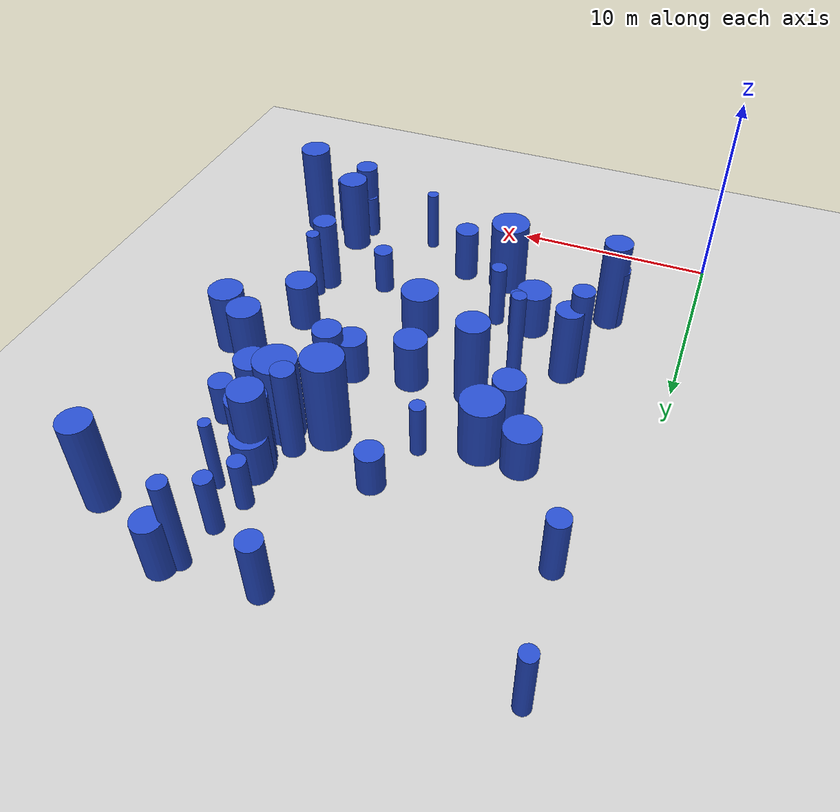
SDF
<sdf version="1.6">
 <world name="default">
  <model name="ground_plane">
   <static>1</static>
   <link name="link">
    <collision name="collision">
     <geometry><plane><normal>0 0 1</normal><size>100 100</size></plane></geometry>
     <surface><friction><ode><mu>100</mu><mu2>50</mu2></ode></friction></surface>
    </collision>
    <visual name="visual">
     <cast_shadows>0</cast_shadows>
     <geometry><plane><normal>0 0 1</normal><size>100 100</size></plane></geometry>
     <material>
      <script><uri>file://media/materials/scripts/gazebo.material</uri><name>Gazebo/Grey</name></script>
     </material>
    </visual>
   </link>
  </model>
  <model name="0">
   <static>0</static>
   <link name="link">
    <inertial>
     <mass>2</mass>
     <inertia><ixx>1.44488</ixx><ixy>0</ixy><ixz>0</ixz><iyy>1.44488</iyy><iyz>0</iyz><izz>0.600062</izz></inertia>
    </inertial>
    <collision name="collision">
     <geometry><cylinder><length>2.6209</length><radius>0.774637</radius></cylinder></geometry>
     <surface><contact><collide_without_contact>1</collide_without_contact></contact></surface>
    </collision>
    <visual name="visual">
     <geometry><cylinder><length>2.6209</length><radius>0.774637</radius></cylinder></geometry>
     <material>
      <script><uri>file://media/materials/scripts/gazebo.material</uri><name>Gazebo/Blue</name></script>
     </material>
    </visual>
    <gravity>0</gravity>
   </link>
   <pose>18.5084 11.3578 1.31045 0 -0 0</pose>
  </model>
  <model name="5">
   <static>0</static>
   <link name="link">
    <inertial>
     <mass>2</mass>
     <inertia><ixx>1.15559</ixx><ixy>0</ixy><ixz>0</ixz><iyy>1.15559</iyy><iyz>0</iyz><izz>0.571928</izz></inertia>
    </inertial>
    <collision name="collision">
     <geometry><cylinder><length>2.28424</length><radius>0.756259</radius></cylinder></geometry>
     <surface><contact><collide_without_contact>1</collide_without_contact></contact></surface>
    </collision>
    <visual name="visual">
     <geometry><cylinder><length>2.28424</length><radius>0.756259</radius></cylinder></geometry>
     <material>
      <script><uri>file://media/materials/scripts/gazebo.material</uri><name>Gazebo/Blue</name></script>
     </material>
    </visual>
    <gravity>0</gravity>
   </link>
   <pose>14.5568 14.0318 1.14212 0 -0 0</pose>
  </model>
  <model name="9">
   <static>0</static>
   <link name="link">
    <inertial>
     <mass>2</mass>
     <inertia><ixx>2.4622</ixx><ixy>0</ixy><ixz>0</ixz><iyy>2.4622</iyy><iyz>0</iyz><izz>0.0741787</izz></inertia>
    </inertial>
    <collision name="collision">
     <geometry><cylinder><length>3.81453</length><radius>0.272358</radius></cylinder></geometry>
     <surface><contact><collide_without_contact>1</collide_without_contact></contact></surface>
    </collision>
    <visual name="visual">
     <geometry><cylinder><length>3.81453</length><radius>0.272358</radius></cylinder></geometry>
     <material>
      <script><uri>file://media/materials/scripts/gazebo.material</uri><name>Gazebo/Blue</name></script>
     </material>
    </visual>
    <gravity>0</gravity>
   </link>
   <pose>16.9794 22.3718 1.90727 0 -0 0</pose>
  </model>
  <model name="20">
   <static>0</static>
   <link name="link">
    <inertial>
     <mass>2</mass>
     <inertia>
      <ixx>0.985313</ixx>
      <ixy>0</ixy>
      <ixz>0</ixz>
      <iyy>0.985313</iyy>
      <iyz>0</iyz>
      <izz>0.312388</izz>
     </inertia>
    </inertial>
    <collision name="collision">
     <geometry><cylinder><length>2.23041</length><radius>0.558917</radius></cylinder></geometry>
     <surface><contact><collide_without_contact>1</collide_without_contact></contact></surface>
    </collision>
    <visual name="visual">
     <geometry><cylinder><length>2.23041</length><radius>0.558917</radius></cylinder></geometry>
     <material>
      <script><uri>file://media/materials/scripts/gazebo.material</uri><name>Gazebo/Blue</name></script>
     </material>
    </visual>
    <gravity>0</gravity>
   </link>
   <pose>18.7341 18.7242 1.1152 0 -0 0</pose>
  </model>
  <model name="24">
   <static>0</static>
   <link name="link">
    <inertial>
     <mass>2</mass>
     <inertia><ixx>1.15813</ixx><ixy>0</ixy><ixz>0</ixz><iyy>1.15813</iyy><iyz>0</iyz><izz>0.112947</izz></inertia>
    </inertial>
    <collision name="collision">
     <geometry><cylinder><length>2.57098</length><radius>0.336075</radius></cylinder></geometry>
     <surface><contact><collide_without_contact>1</collide_without_contact></contact></surface>
    </collision>
    <visual name="visual">
     <geometry><cylinder><length>2.57098</length><radius>0.336075</radius></cylinder></geometry>
     <material>
      <script><uri>file://media/materials/scripts/gazebo.material</uri><name>Gazebo/Blue</name></script>
     </material>
    </visual>
    <gravity>0</gravity>
   </link>
   <pose>8.17971 8.45153 1.28549 0 -0 0</pose>
  </model>
  <model name="43">
   <static>0</static>
   <link name="link">
    <inertial>
     <mass>2</mass>
     <inertia><ixx>2.22072</ixx><ixy>0</ixy><ixz>0</ixz><iyy>2.22072</iyy><iyz>0</iyz><izz>0.71958</izz></inertia>
    </inertial>
    <collision name="collision">
     <geometry><cylinder><length>3.3415</length><radius>0.84828</radius></cylinder></geometry>
     <surface><contact><collide_without_contact>1</collide_without_contact></contact></surface>
    </collision>
    <visual name="visual">
     <geometry><cylinder><length>3.3415</length><radius>0.84828</radius></cylinder></geometry>
     <material>
      <script><uri>file://media/materials/scripts/gazebo.material</uri><name>Gazebo/Blue</name></script>
     </material>
    </visual>
    <gravity>0</gravity>
   </link>
   <pose>21.0235 14.1172 1.67075 0 -0 0</pose>
  </model>
  <model name="44">
   <static>0</static>
   <link name="link">
    <inertial>
     <mass>2</mass>
     <inertia>
      <ixx>0.938137</ixx>
      <ixy>0</ixy>
      <ixz>0</ixz>
      <iyy>0.938137</iyy>
      <iyz>0</iyz>
      <izz>0.405193</izz>
     </inertia>
    </inertial>
    <collision name="collision">
     <geometry><cylinder><length>2.10077</length><radius>0.636547</radius></cylinder></geometry>
     <surface><contact><collide_without_contact>1</collide_without_contact></contact></surface>
    </collision>
    <visual name="visual">
     <geometry><cylinder><length>2.10077</length><radius>0.636547</radius></cylinder></geometry>
     <material>
      <script><uri>file://media/materials/scripts/gazebo.material</uri><name>Gazebo/Blue</name></script>
     </material>
    </visual>
    <gravity>0</gravity>
   </link>
   <pose>10.9429 20.0317 1.05039 0 -0 0</pose>
  </model>
  <model name="48">
   <static>0</static>
   <link name="link">
    <inertial>
     <mass>2</mass>
     <inertia><ixx>2.00723</ixx><ixy>0</ixy><ixz>0</ixz><iyy>2.00723</iyy><iyz>0</iyz><izz>0.44952</izz></inertia>
    </inertial>
    <collision name="collision">
     <geometry><cylinder><length>3.27029</length><radius>0.670462</radius></cylinder></geometry>
     <surface><contact><collide_without_contact>1</collide_without_contact></contact></surface>
    </collision>
    <visual name="visual">
     <geometry><cylinder><length>3.27029</length><radius>0.670462</radius></cylinder></geometry>
     <material>
      <script><uri>file://media/materials/scripts/gazebo.material</uri><name>Gazebo/Blue</name></script>
     </material>
    </visual>
    <gravity>0</gravity>
   </link>
   <pose>3.91397 5.71334 1.63514 0 -0 0</pose>
  </model>
  <model name="50">
   <static>0</static>
   <link name="link">
    <inertial>
     <mass>2</mass>
     <inertia><ixx>4.36449</ixx><ixy>0</ixy><ixz>0</ixz><iyy>4.36449</iyy><iyz>0</iyz><izz>0.596492</izz></inertia>
    </inertial>
    <collision name="collision">
     <geometry><cylinder><length>4.93938</length><radius>0.772329</radius></cylinder></geometry>
     <surface><contact><collide_without_contact>1</collide_without_contact></contact></surface>
    </collision>
    <visual name="visual">
     <geometry><cylinder><length>4.93938</length><radius>0.772329</radius></cylinder></geometry>
     <material>
      <script><uri>file://media/materials/scripts/gazebo.material</uri><name>Gazebo/Blue</name></script>
     </material>
    </visual>
    <gravity>0</gravity>
   </link>
   <pose>21.6401 3.0206 2.46969 0 -0 0</pose>
  </model>
  <model name="53">
   <static>0</static>
   <link name="link">
    <inertial>
     <mass>2</mass>
     <inertia><ixx>4.1614</ixx><ixy>0</ixy><ixz>0</ixz><iyy>4.1614</iyy><iyz>0</iyz><izz>0.483095</izz></inertia>
    </inertial>
    <collision name="collision">
     <geometry><cylinder><length>4.84965</length><radius>0.695051</radius></cylinder></geometry>
     <surface><contact><collide_without_contact>1</collide_without_contact></contact></surface>
    </collision>
    <visual name="visual">
     <geometry><cylinder><length>4.84965</length><radius>0.695051</radius></cylinder></geometry>
     <material>
      <script><uri>file://media/materials/scripts/gazebo.material</uri><name>Gazebo/Blue</name></script>
     </material>
    </visual>
    <gravity>0</gravity>
   </link>
   <pose>4.01536 5.78977 2.42483 0 -0 0</pose>
  </model>
  <model name="57">
   <static>0</static>
   <link name="link">
    <inertial>
     <mass>2</mass>
     <inertia><ixx>1.34468</ixx><ixy>0</ixy><ixz>0</ixz><iyy>1.34468</iyy><iyz>0</iyz><izz>0.738276</izz></inertia>
    </inertial>
    <collision name="collision">
     <geometry><cylinder><length>2.41935</length><radius>0.85923</radius></cylinder></geometry>
     <surface><contact><collide_without_contact>1</collide_without_contact></contact></surface>
    </collision>
    <visual name="visual">
     <geometry><cylinder><length>2.41935</length><radius>0.85923</radius></cylinder></geometry>
     <material>
      <script><uri>file://media/materials/scripts/gazebo.material</uri><name>Gazebo/Blue</name></script>
     </material>
    </visual>
    <gravity>0</gravity>
   </link>
   <pose>7.50045 7.71689 1.20967 0 -0 0</pose>
  </model>
  <model name="58">
   <static>0</static>
   <link name="link">
    <inertial>
     <mass>2</mass>
     <inertia><ixx>2.13713</ixx><ixy>0</ixy><ixz>0</ixz><iyy>2.13713</iyy><iyz>0</iyz><izz>0.129492</izz></inertia>
    </inertial>
    <collision name="collision">
     <geometry><cylinder><length>3.52623</length><radius>0.35985</radius></cylinder></geometry>
     <surface><contact><collide_without_contact>1</collide_without_contact></contact></surface>
    </collision>
    <visual name="visual">
     <geometry><cylinder><length>3.52623</length><radius>0.35985</radius></cylinder></geometry>
     <material>
      <script><uri>file://media/materials/scripts/gazebo.material</uri><name>Gazebo/Blue</name></script>
     </material>
    </visual>
    <gravity>0</gravity>
   </link>
   <pose>2.13297 27.1405 1.76312 0 -0 0</pose>
  </model>
  <model name="59">
   <static>0</static>
   <link name="link">
    <inertial>
     <mass>2</mass>
     <inertia><ixx>1.95679</ixx><ixy>0</ixy><ixz>0</ixz><iyy>1.95679</iyy><iyz>0</iyz><izz>0.291907</izz></inertia>
    </inertial>
    <collision name="collision">
     <geometry><cylinder><length>3.29622</length><radius>0.540284</radius></cylinder></geometry>
     <surface><contact><collide_without_contact>1</collide_without_contact></contact></surface>
    </collision>
    <visual name="visual">
     <geometry><cylinder><length>3.29622</length><radius>0.540284</radius></cylinder></geometry>
     <material>
      <script><uri>file://media/materials/scripts/gazebo.material</uri><name>Gazebo/Blue</name></script>
     </material>
    </visual>
    <gravity>0</gravity>
   </link>
   <pose>12.7214 26.4089 1.64811 0 -0 0</pose>
  </model>
  <model name="79">
   <static>0</static>
   <link name="link">
    <inertial>
     <mass>2</mass>
     <inertia><ixx>4.22648</ixx><ixy>0</ixy><ixz>0</ixz><iyy>4.22648</iyy><iyz>0</iyz><izz>0.120914</izz></inertia>
    </inertial>
    <collision name="collision">
     <geometry><cylinder><length>4.99961</length><radius>0.347727</radius></cylinder></geometry>
     <surface><contact><collide_without_contact>1</collide_without_contact></contact></surface>
    </collision>
    <visual name="visual">
     <geometry><cylinder><length>4.99961</length><radius>0.347727</radius></cylinder></geometry>
     <material>
      <script><uri>file://media/materials/scripts/gazebo.material</uri><name>Gazebo/Blue</name></script>
     </material>
    </visual>
    <gravity>0</gravity>
   </link>
   <pose>7.28848 11.5718 2.49981 0 -0 0</pose>
  </model>
  <model name="85">
   <static>0</static>
   <link name="link">
    <inertial>
     <mass>2</mass>
     <inertia><ixx>1.35185</ixx><ixy>0</ixy><ixz>0</ixz><iyy>1.35185</iyy><iyz>0</iyz><izz>0.134537</izz></inertia>
    </inertial>
    <collision name="collision">
     <geometry><cylinder><length>2.77624</length><radius>0.366793</radius></cylinder></geometry>
     <surface><contact><collide_without_contact>1</collide_without_contact></contact></surface>
    </collision>
    <visual name="visual">
     <geometry><cylinder><length>2.77624</length><radius>0.366793</radius></cylinder></geometry>
     <material>
      <script><uri>file://media/materials/scripts/gazebo.material</uri><name>Gazebo/Blue</name></script>
     </material>
    </visual>
    <gravity>0</gravity>
   </link>
   <pose>9.80805 17.5106 1.38812 0 -0 0</pose>
  </model>
  <model name="88">
   <static>0</static>
   <link name="link">
    <inertial>
     <mass>2</mass>
     <inertia><ixx>2.81885</ixx><ixy>0</ixy><ixz>0</ixz><iyy>2.81885</iyy><iyz>0</iyz><izz>0.82529</izz></inertia>
    </inertial>
    <collision name="collision">
     <geometry><cylinder><length>3.79964</length><radius>0.908455</radius></cylinder></geometry>
     <surface><contact><collide_without_contact>1</collide_without_contact></contact></surface>
    </collision>
    <visual name="visual">
     <geometry><cylinder><length>3.79964</length><radius>0.908455</radius></cylinder></geometry>
     <material>
      <script><uri>file://media/materials/scripts/gazebo.material</uri><name>Gazebo/Blue</name></script>
     </material>
    </visual>
    <gravity>0</gravity>
   </link>
   <pose>16.1867 20.5094 1.89982 0 -0 0</pose>
  </model>
  <model name="94">
   <static>0</static>
   <link name="link">
    <inertial>
     <mass>2</mass>
     <inertia><ixx>2.06501</ixx><ixy>0</ixy><ixz>0</ixz><iyy>2.06501</iyy><iyz>0</iyz><izz>0.98519</izz></inertia>
    </inertial>
    <collision name="collision">
     <geometry><cylinder><length>3.07156</length><radius>0.992567</radius></cylinder></geometry>
     <surface><contact><collide_without_contact>1</collide_without_contact></contact></surface>
    </collision>
    <visual name="visual">
     <geometry><cylinder><length>3.07156</length><radius>0.992567</radius></cylinder></geometry>
     <material>
      <script><uri>file://media/materials/scripts/gazebo.material</uri><name>Gazebo/Blue</name></script>
     </material>
    </visual>
    <gravity>0</gravity>
   </link>
   <pose>7.2758 16.5381 1.53578 0 -0 0</pose>
  </model>
  <model name="100">
   <static>0</static>
   <link name="link">
    <inertial>
     <mass>2</mass>
     <inertia><ixx>2.93556</ixx><ixy>0</ixy><ixz>0</ixz><iyy>2.93556</iyy><iyz>0</iyz><izz>0.950215</izz></inertia>
    </inertial>
    <collision name="collision">
     <geometry><cylinder><length>3.84223</length><radius>0.97479</radius></cylinder></geometry>
     <surface><contact><collide_without_contact>1</collide_without_contact></contact></surface>
    </collision>
    <visual name="visual">
     <geometry><cylinder><length>3.84223</length><radius>0.97479</radius></cylinder></geometry>
     <material>
      <script><uri>file://media/materials/scripts/gazebo.material</uri><name>Gazebo/Blue</name></script>
     </material>
    </visual>
    <gravity>0</gravity>
   </link>
   <pose>9.77484 4.57921 1.92111 0 -0 0</pose>
  </model>
  <model name="102">
   <static>0</static>
   <link name="link">
    <inertial>
     <mass>2</mass>
     <inertia><ixx>1.41837</ixx><ixy>0</ixy><ixz>0</ixz><iyy>1.41837</iyy><iyz>0</iyz><izz>0.884479</izz></inertia>
    </inertial>
    <collision name="collision">
     <geometry><cylinder><length>2.42008</length><radius>0.940468</radius></cylinder></geometry>
     <surface><contact><collide_without_contact>1</collide_without_contact></contact></surface>
    </collision>
    <visual name="visual">
     <geometry><cylinder><length>2.42008</length><radius>0.940468</radius></cylinder></geometry>
     <material>
      <script><uri>file://media/materials/scripts/gazebo.material</uri><name>Gazebo/Blue</name></script>
     </material>
    </visual>
    <gravity>0</gravity>
   </link>
   <pose>12.7834 9.73949 1.21004 0 -0 0</pose>
  </model>
  <model name="108">
   <static>0</static>
   <link name="link">
    <inertial>
     <mass>2</mass>
     <inertia><ixx>1.98997</ixx><ixy>0</ixy><ixz>0</ixz><iyy>1.98997</iyy><iyz>0</iyz><izz>0.149514</izz></inertia>
    </inertial>
    <collision name="collision">
     <geometry><cylinder><length>3.38988</length><radius>0.38667</radius></cylinder></geometry>
     <surface><contact><collide_without_contact>1</collide_without_contact></contact></surface>
    </collision>
    <visual name="visual">
     <geometry><cylinder><length>3.38988</length><radius>0.38667</radius></cylinder></geometry>
     <material>
      <script><uri>file://media/materials/scripts/gazebo.material</uri><name>Gazebo/Blue</name></script>
     </material>
    </visual>
    <gravity>0</gravity>
   </link>
   <pose>9.34453 7.81257 1.69494 0 -0 0</pose>
  </model>
  <model name="117">
   <static>0</static>
   <link name="link">
    <inertial>
     <mass>2</mass>
     <inertia><ixx>3.02417</ixx><ixy>0</ixy><ixz>0</ixz><iyy>3.02417</iyy><iyz>0</iyz><izz>0.335481</izz></inertia>
    </inertial>
    <collision name="collision">
     <geometry><cylinder><length>4.13988</length><radius>0.579207</radius></cylinder></geometry>
     <surface><contact><collide_without_contact>1</collide_without_contact></contact></surface>
    </collision>
    <visual name="visual">
     <geometry><cylinder><length>4.13988</length><radius>0.579207</radius></cylinder></geometry>
     <material>
      <script><uri>file://media/materials/scripts/gazebo.material</uri><name>Gazebo/Blue</name></script>
     </material>
    </visual>
    <gravity>0</gravity>
   </link>
   <pose>18.7832 2.53602 2.06994 0 -0 0</pose>
  </model>
  <model name="118">
   <static>0</static>
   <link name="link">
    <inertial>
     <mass>2</mass>
     <inertia><ixx>3.62814</ixx><ixy>0</ixy><ixz>0</ixz><iyy>3.62814</iyy><iyz>0</iyz><izz>0.622042</izz></inertia>
    </inertial>
    <collision name="collision">
     <geometry><cylinder><length>4.46124</length><radius>0.788696</radius></cylinder></geometry>
     <surface><contact><collide_without_contact>1</collide_without_contact></contact></surface>
    </collision>
    <visual name="visual">
     <geometry><cylinder><length>4.46124</length><radius>0.788696</radius></cylinder></geometry>
     <material>
      <script><uri>file://media/materials/scripts/gazebo.material</uri><name>Gazebo/Blue</name></script>
     </material>
    </visual>
    <gravity>0</gravity>
   </link>
   <pose>8.79438 13.4327 2.23062 0 -0 0</pose>
  </model>
  <model name="122">
   <static>0</static>
   <link name="link">
    <inertial>
     <mass>2</mass>
     <inertia><ixx>1.87042</ixx><ixy>0</ixy><ixz>0</ixz><iyy>1.87042</iyy><iyz>0</iyz><izz>0.254902</izz></inertia>
    </inertial>
    <collision name="collision">
     <geometry><cylinder><length>3.23386</length><radius>0.504878</radius></cylinder></geometry>
     <surface><contact><collide_without_contact>1</collide_without_contact></contact></surface>
    </collision>
    <visual name="visual">
     <geometry><cylinder><length>3.23386</length><radius>0.504878</radius></cylinder></geometry>
     <material>
      <script><uri>file://media/materials/scripts/gazebo.material</uri><name>Gazebo/Blue</name></script>
     </material>
    </visual>
    <gravity>0</gravity>
   </link>
   <pose>2.64636 21.4148 1.61693 0 -0 0</pose>
  </model>
  <model name="127">
   <static>0</static>
   <link name="link">
    <inertial>
     <mass>2</mass>
     <inertia><ixx>1.09592</ixx><ixy>0</ixy><ixz>0</ixz><iyy>1.09592</iyy><iyz>0</iyz><izz>0.235453</izz></inertia>
    </inertial>
    <collision name="collision">
     <geometry><cylinder><length>2.42263</length><radius>0.485235</radius></cylinder></geometry>
     <surface><contact><collide_without_contact>1</collide_without_contact></contact></surface>
    </collision>
    <visual name="visual">
     <geometry><cylinder><length>2.42263</length><radius>0.485235</radius></cylinder></geometry>
     <material>
      <script><uri>file://media/materials/scripts/gazebo.material</uri><name>Gazebo/Blue</name></script>
     </material>
    </visual>
    <gravity>0</gravity>
   </link>
   <pose>15.8013 7.30906 1.21132 0 -0 0</pose>
  </model>
  <model name="132">
   <static>0</static>
   <link name="link">
    <inertial>
     <mass>2</mass>
     <inertia><ixx>1.84648</ixx><ixy>0</ixy><ixz>0</ixz><iyy>1.84648</iyy><iyz>0</iyz><izz>0.561534</izz></inertia>
    </inertial>
    <collision name="collision">
     <geometry><cylinder><length>3.06501</length><radius>0.749356</radius></cylinder></geometry>
     <surface><contact><collide_without_contact>1</collide_without_contact></contact></surface>
    </collision>
    <visual name="visual">
     <geometry><cylinder><length>3.06501</length><radius>0.749356</radius></cylinder></geometry>
     <material>
      <script><uri>file://media/materials/scripts/gazebo.material</uri><name>Gazebo/Blue</name></script>
     </material>
    </visual>
    <gravity>0</gravity>
   </link>
   <pose>6.58976 14.8962 1.53251 0 -0 0</pose>
  </model>
  <model name="140">
   <static>0</static>
   <link name="link">
    <inertial>
     <mass>2</mass>
     <inertia><ixx>2.38496</ixx><ixy>0</ixy><ixz>0</ixz><iyy>2.38496</iyy><iyz>0</iyz><izz>0.113818</izz></inertia>
    </inertial>
    <collision name="collision">
     <geometry><cylinder><length>3.73742</length><radius>0.33737</radius></cylinder></geometry>
     <surface><contact><collide_without_contact>1</collide_without_contact></contact></surface>
    </collision>
    <visual name="visual">
     <geometry><cylinder><length>3.73742</length><radius>0.33737</radius></cylinder></geometry>
     <material>
      <script><uri>file://media/materials/scripts/gazebo.material</uri><name>Gazebo/Blue</name></script>
     </material>
    </visual>
    <gravity>0</gravity>
   </link>
   <pose>18.9409 8.96356 1.86871 0 -0 0</pose>
  </model>
  <model name="153">
   <static>0</static>
   <link name="link">
    <inertial>
     <mass>2</mass>
     <inertia><ixx>1.69776</ixx><ixy>0</ixy><ixz>0</ixz><iyy>1.69776</iyy><iyz>0</iyz><izz>0.423456</izz></inertia>
    </inertial>
    <collision name="collision">
     <geometry><cylinder><length>2.986</length><radius>0.650735</radius></cylinder></geometry>
     <surface><contact><collide_without_contact>1</collide_without_contact></contact></surface>
    </collision>
    <visual name="visual">
     <geometry><cylinder><length>2.986</length><radius>0.650735</radius></cylinder></geometry>
     <material>
      <script><uri>file://media/materials/scripts/gazebo.material</uri><name>Gazebo/Blue</name></script>
     </material>
    </visual>
    <gravity>0</gravity>
   </link>
   <pose>16.8882 26.7755 1.493 0 -0 0</pose>
  </model>
  <model name="154">
   <static>0</static>
   <link name="link">
    <inertial>
     <mass>2</mass>
     <inertia>
      <ixx>1.91362</ixx>
      <ixy>0</ixy>
      <ixz>0</ixz>
      <iyy>1.91362</iyy>
      <iyz>0</iyz>
      <izz>0.0902472</izz>
     </inertia>
    </inertial>
    <collision name="collision">
     <geometry><cylinder><length>3.34828</length><radius>0.300412</radius></cylinder></geometry>
     <surface><contact><collide_without_contact>1</collide_without_contact></contact></surface>
    </collision>
    <visual name="visual">
     <geometry><cylinder><length>3.34828</length><radius>0.300412</radius></cylinder></geometry>
     <material>
      <script><uri>file://media/materials/scripts/gazebo.material</uri><name>Gazebo/Blue</name></script>
     </material>
    </visual>
    <gravity>0</gravity>
   </link>
   <pose>14.7819 2.70133 1.67414 0 -0 0</pose>
  </model>
  <model name="156">
   <static>0</static>
   <link name="link">
    <inertial>
     <mass>2</mass>
     <inertia><ixx>2.78994</ixx><ixy>0</ixy><ixz>0</ixz><iyy>2.78994</iyy><iyz>0</iyz><izz>0.355197</izz></inertia>
    </inertial>
    <collision name="collision">
     <geometry><cylinder><length>3.95905</length><radius>0.595984</radius></cylinder></geometry>
     <surface><contact><collide_without_contact>1</collide_without_contact></contact></surface>
    </collision>
    <visual name="visual">
     <geometry><cylinder><length>3.95905</length><radius>0.595984</radius></cylinder></geometry>
     <material>
      <script><uri>file://media/materials/scripts/gazebo.material</uri><name>Gazebo/Blue</name></script>
     </material>
    </visual>
    <gravity>0</gravity>
   </link>
   <pose>18.7412 7.97413 1.97952 0 -0 0</pose>
  </model>
  <model name="158">
   <static>0</static>
   <link name="link">
    <inertial>
     <mass>2</mass>
     <inertia>
      <ixx>2.98725</ixx>
      <ixy>0</ixy>
      <ixz>0</ixz>
      <iyy>2.98725</iyy>
      <iyz>0</iyz>
      <izz>0.0869814</izz>
     </inertia>
    </inertial>
    <collision name="collision">
     <geometry><cylinder><length>4.20268</length><radius>0.294926</radius></cylinder></geometry>
     <surface><contact><collide_without_contact>1</collide_without_contact></contact></surface>
    </collision>
    <visual name="visual">
     <geometry><cylinder><length>4.20268</length><radius>0.294926</radius></cylinder></geometry>
     <material>
      <script><uri>file://media/materials/scripts/gazebo.material</uri><name>Gazebo/Blue</name></script>
     </material>
    </visual>
    <gravity>0</gravity>
   </link>
   <pose>7.3226 11.294 2.10134 0 -0 0</pose>
  </model>
  <model name="168">
   <static>0</static>
   <link name="link">
    <inertial>
     <mass>2</mass>
     <inertia><ixx>3.86097</ixx><ixy>0</ixy><ixz>0</ixz><iyy>3.86097</iyy><iyz>0</iyz><izz>0.602433</izz></inertia>
    </inertial>
    <collision name="collision">
     <geometry><cylinder><length>4.62153</length><radius>0.776166</radius></cylinder></geometry>
     <surface><contact><collide_without_contact>1</collide_without_contact></contact></surface>
    </collision>
    <visual name="visual">
     <geometry><cylinder><length>4.62153</length><radius>0.776166</radius></cylinder></geometry>
     <material>
      <script><uri>file://media/materials/scripts/gazebo.material</uri><name>Gazebo/Blue</name></script>
     </material>
    </visual>
    <gravity>0</gravity>
   </link>
   <pose>15.895 20.8243 2.31076 0 -0 0</pose>
  </model>
  <model name="172">
   <static>0</static>
   <link name="link">
    <inertial>
     <mass>2</mass>
     <inertia><ixx>1.05244</ixx><ixy>0</ixy><ixz>0</ixz><iyy>1.05244</iyy><iyz>0</iyz><izz>0.132693</izz></inertia>
    </inertial>
    <collision name="collision">
     <geometry><cylinder><length>2.4324</length><radius>0.36427</radius></cylinder></geometry>
     <surface><contact><collide_without_contact>1</collide_without_contact></contact></surface>
    </collision>
    <visual name="visual">
     <geometry><cylinder><length>2.4324</length><radius>0.36427</radius></cylinder></geometry>
     <material>
      <script><uri>file://media/materials/scripts/gazebo.material</uri><name>Gazebo/Blue</name></script>
     </material>
    </visual>
    <gravity>0</gravity>
   </link>
   <pose>18.4969 2.7797 1.2162 0 -0 0</pose>
  </model>
  <model name="174">
   <static>0</static>
   <link name="link">
    <inertial>
     <mass>2</mass>
     <inertia><ixx>4.14774</ixx><ixy>0</ixy><ixz>0</ixz><iyy>4.14774</iyy><iyz>0</iyz><izz>0.279668</izz></inertia>
    </inertial>
    <collision name="collision">
     <geometry><cylinder><length>4.90382</length><radius>0.528837</radius></cylinder></geometry>
     <surface><contact><collide_without_contact>1</collide_without_contact></contact></surface>
    </collision>
    <visual name="visual">
     <geometry><cylinder><length>4.90382</length><radius>0.528837</radius></cylinder></geometry>
     <material>
      <script><uri>file://media/materials/scripts/gazebo.material</uri><name>Gazebo/Blue</name></script>
     </material>
    </visual>
    <gravity>0</gravity>
   </link>
   <pose>4.68632 10.0982 2.45191 0 -0 0</pose>
  </model>
  <model name="177">
   <static>0</static>
   <link name="link">
    <inertial>
     <mass>2</mass>
     <inertia><ixx>2.74835</ixx><ixy>0</ixy><ixz>0</ixz><iyy>2.74835</iyy><iyz>0</iyz><izz>0.609187</izz></inertia>
    </inertial>
    <collision name="collision">
     <geometry><cylinder><length>3.82917</length><radius>0.780504</radius></cylinder></geometry>
     <surface><contact><collide_without_contact>1</collide_without_contact></contact></surface>
    </collision>
    <visual name="visual">
     <geometry><cylinder><length>3.82917</length><radius>0.780504</radius></cylinder></geometry>
     <material>
      <script><uri>file://media/materials/scripts/gazebo.material</uri><name>Gazebo/Blue</name></script>
     </material>
    </visual>
    <gravity>0</gravity>
   </link>
   <pose>17.1312 18.4067 1.91459 0 -0 0</pose>
  </model>
  <model name="181">
   <static>0</static>
   <link name="link">
    <inertial>
     <mass>2</mass>
     <inertia><ixx>1.25919</ixx><ixy>0</ixy><ixz>0</ixz><iyy>1.25919</iyy><iyz>0</iyz><izz>0.729113</izz></inertia>
    </inertial>
    <collision name="collision">
     <geometry><cylinder><length>2.31685</length><radius>0.853881</radius></cylinder></geometry>
     <surface><contact><collide_without_contact>1</collide_without_contact></contact></surface>
    </collision>
    <visual name="visual">
     <geometry><cylinder><length>2.31685</length><radius>0.853881</radius></cylinder></geometry>
     <material>
      <script><uri>file://media/materials/scripts/gazebo.material</uri><name>Gazebo/Blue</name></script>
     </material>
    </visual>
    <gravity>0</gravity>
   </link>
   <pose>5.38353 16.8018 1.15842 0 -0 0</pose>
  </model>
  <model name="186">
   <static>0</static>
   <link name="link">
    <inertial>
     <mass>2</mass>
     <inertia><ixx>1.49255</ixx><ixy>0</ixy><ixz>0</ixz><iyy>1.49255</iyy><iyz>0</iyz><izz>0.644241</izz></inertia>
    </inertial>
    <collision name="collision">
     <geometry><cylinder><length>2.65002</length><radius>0.802646</radius></cylinder></geometry>
     <surface><contact><collide_without_contact>1</collide_without_contact></contact></surface>
    </collision>
    <visual name="visual">
     <geometry><cylinder><length>2.65002</length><radius>0.802646</radius></cylinder></geometry>
     <material>
      <script><uri>file://media/materials/scripts/gazebo.material</uri><name>Gazebo/Blue</name></script>
     </material>
    </visual>
    <gravity>0</gravity>
   </link>
   <pose>11.7399 13.5246 1.32501 0 -0 0</pose>
  </model>
  <model name="187">
   <static>0</static>
   <link name="link">
    <inertial>
     <mass>2</mass>
     <inertia><ixx>4.23987</ixx><ixy>0</ixy><ixz>0</ixz><iyy>4.23987</iyy><iyz>0</iyz><izz>0.923201</izz></inertia>
    </inertial>
    <collision name="collision">
     <geometry><cylinder><length>4.76126</length><radius>0.960834</radius></cylinder></geometry>
     <surface><contact><collide_without_contact>1</collide_without_contact></contact></surface>
    </collision>
    <visual name="visual">
     <geometry><cylinder><length>4.76126</length><radius>0.960834</radius></cylinder></geometry>
     <material>
      <script><uri>file://media/materials/scripts/gazebo.material</uri><name>Gazebo/Blue</name></script>
     </material>
    </visual>
    <gravity>0</gravity>
   </link>
   <pose>13.7917 18.1429 2.38063 0 -0 0</pose>
  </model>
  <model name="190">
   <static>0</static>
   <link name="link">
    <inertial>
     <mass>2</mass>
     <inertia><ixx>3.58166</ixx><ixy>0</ixy><ixz>0</ixz><iyy>3.58166</iyy><iyz>0</iyz><izz>0.960053</izz></inertia>
    </inertial>
    <collision name="collision">
     <geometry><cylinder><length>4.31391</length><radius>0.979823</radius></cylinder></geometry>
     <surface><contact><collide_without_contact>1</collide_without_contact></contact></surface>
    </collision>
    <visual name="visual">
     <geometry><cylinder><length>4.31391</length><radius>0.979823</radius></cylinder></geometry>
     <material>
      <script><uri>file://media/materials/scripts/gazebo.material</uri><name>Gazebo/Blue</name></script>
     </material>
    </visual>
    <gravity>0</gravity>
   </link>
   <pose>15.8474 18.5398 2.15695 0 -0 0</pose>
  </model>
  <model name="192">
   <static>0</static>
   <link name="link">
    <inertial>
     <mass>2</mass>
     <inertia><ixx>1.96292</ixx><ixy>0</ixy><ixz>0</ixz><iyy>1.96292</iyy><iyz>0</iyz><izz>0.540274</izz></inertia>
    </inertial>
    <collision name="collision">
     <geometry><cylinder><length>3.18695</length><radius>0.735034</radius></cylinder></geometry>
     <surface><contact><collide_without_contact>1</collide_without_contact></contact></surface>
    </collision>
    <visual name="visual">
     <geometry><cylinder><length>3.18695</length><radius>0.735034</radius></cylinder></geometry>
     <material>
      <script><uri>file://media/materials/scripts/gazebo.material</uri><name>Gazebo/Blue</name></script>
     </material>
    </visual>
    <gravity>0</gravity>
   </link>
   <pose>19.703 2.76617 1.59348 0 -0 0</pose>
  </model>
  <model name="193">
   <static>0</static>
   <link name="link">
    <inertial>
     <mass>2</mass>
     <inertia><ixx>1.20079</ixx><ixy>0</ixy><ixz>0</ixz><iyy>1.20079</iyy><iyz>0</iyz><izz>0.702629</izz></inertia>
    </inertial>
    <collision name="collision">
     <geometry><cylinder><length>2.25762</length><radius>0.83823</radius></cylinder></geometry>
     <surface><contact><collide_without_contact>1</collide_without_contact></contact></surface>
    </collision>
    <visual name="visual">
     <geometry><cylinder><length>2.25762</length><radius>0.83823</radius></cylinder></geometry>
     <material>
      <script><uri>file://media/materials/scripts/gazebo.material</uri><name>Gazebo/Blue</name></script>
     </material>
    </visual>
    <gravity>0</gravity>
   </link>
   <pose>15.9171 21.1643 1.12881 0 -0 0</pose>
  </model>
  <model name="196">
   <static>0</static>
   <link name="link">
    <inertial>
     <mass>2</mass>
     <inertia><ixx>3.13099</ixx><ixy>0</ixy><ixz>0</ixz><iyy>3.13099</iyy><iyz>0</iyz><izz>0.543498</izz></inertia>
    </inertial>
    <collision name="collision">
     <geometry><cylinder><length>4.14191</length><radius>0.737223</radius></cylinder></geometry>
     <surface><contact><collide_without_contact>1</collide_without_contact></contact></surface>
    </collision>
    <visual name="visual">
     <geometry><cylinder><length>4.14191</length><radius>0.737223</radius></cylinder></geometry>
     <material>
      <script><uri>file://media/materials/scripts/gazebo.material</uri><name>Gazebo/Blue</name></script>
     </material>
    </visual>
    <gravity>0</gravity>
   </link>
   <pose>18.9235 4.0465 2.07096 0 -0 0</pose>
  </model>
  <model name="199">
   <static>0</static>
   <link name="link">
    <inertial>
     <mass>2</mass>
     <inertia><ixx>2.91291</ixx><ixy>0</ixy><ixz>0</ixz><iyy>2.91291</iyy><iyz>0</iyz><izz>0.448558</izz></inertia>
    </inertial>
    <collision name="collision">
     <geometry><cylinder><length>4.01644</length><radius>0.669745</radius></cylinder></geometry>
     <surface><contact><collide_without_contact>1</collide_without_contact></contact></surface>
    </collision>
    <visual name="visual">
     <geometry><cylinder><length>4.01644</length><radius>0.669745</radius></cylinder></geometry>
     <material>
      <script><uri>file://media/materials/scripts/gazebo.material</uri><name>Gazebo/Blue</name></script>
     </material>
    </visual>
    <gravity>0</gravity>
   </link>
   <pose>5.11865 10.5389 2.00822 0 -0 0</pose>
  </model>
  <model name="200">
   <static>0</static>
   <link name="link">
    <inertial>
     <mass>2</mass>
     <inertia><ixx>1.22398</ixx><ixy>0</ixy><ixz>0</ixz><iyy>1.22398</iyy><iyz>0</iyz><izz>0.161374</izz></inertia>
    </inertial>
    <collision name="collision">
     <geometry><cylinder><length>2.61911</length><radius>0.401714</radius></cylinder></geometry>
     <surface><contact><collide_without_contact>1</collide_without_contact></contact></surface>
    </collision>
    <visual name="visual">
     <geometry><cylinder><length>2.61911</length><radius>0.401714</radius></cylinder></geometry>
     <material>
      <script><uri>file://media/materials/scripts/gazebo.material</uri><name>Gazebo/Blue</name></script>
     </material>
    </visual>
    <gravity>0</gravity>
   </link>
   <pose>15.4432 22.8217 1.30956 0 -0 0</pose>
  </model>
  <model name="204">
   <static>0</static>
   <link name="link">
    <inertial>
     <mass>2</mass>
     <inertia><ixx>1.57546</ixx><ixy>0</ixy><ixz>0</ixz><iyy>1.57546</iyy><iyz>0</iyz><izz>0.365476</izz></inertia>
    </inertial>
    <collision name="collision">
     <geometry><cylinder><length>2.89073</length><radius>0.604546</radius></cylinder></geometry>
     <surface><contact><collide_without_contact>1</collide_without_contact></contact></surface>
    </collision>
    <visual name="visual">
     <geometry><cylinder><length>2.89073</length><radius>0.604546</radius></cylinder></geometry>
     <material>
      <script><uri>file://media/materials/scripts/gazebo.material</uri><name>Gazebo/Blue</name></script>
     </material>
    </visual>
    <gravity>0</gravity>
   </link>
   <pose>12.1209 4.58324 1.44537 0 -0 0</pose>
  </model>
  <model name="216">
   <static>0</static>
   <link name="link">
    <inertial>
     <mass>2</mass>
     <inertia><ixx>2.38927</ixx><ixy>0</ixy><ixz>0</ixz><iyy>2.38927</iyy><iyz>0</iyz><izz>0.670527</izz></inertia>
    </inertial>
    <collision name="collision">
     <geometry><cylinder><length>3.51056</length><radius>0.818857</radius></cylinder></geometry>
     <surface><contact><collide_without_contact>1</collide_without_contact></contact></surface>
    </collision>
    <visual name="visual">
     <geometry><cylinder><length>3.51056</length><radius>0.818857</radius></cylinder></geometry>
     <material>
      <script><uri>file://media/materials/scripts/gazebo.material</uri><name>Gazebo/Blue</name></script>
     </material>
    </visual>
    <gravity>0</gravity>
   </link>
   <pose>19.4187 15.1777 1.75528 0 -0 0</pose>
  </model>
  <model name="223">
   <static>0</static>
   <link name="link">
    <inertial>
     <mass>2</mass>
     <inertia><ixx>4.01343</ixx><ixy>0</ixy><ixz>0</ixz><iyy>4.01343</iyy><iyz>0</iyz><izz>0.5544</izz></inertia>
    </inertial>
    <collision name="collision">
     <geometry><cylinder><length>4.7347</length><radius>0.74458</radius></cylinder></geometry>
     <surface><contact><collide_without_contact>1</collide_without_contact></contact></surface>
    </collision>
    <visual name="visual">
     <geometry><cylinder><length>4.7347</length><radius>0.74458</radius></cylinder></geometry>
     <material>
      <script><uri>file://media/materials/scripts/gazebo.material</uri><name>Gazebo/Blue</name></script>
     </material>
    </visual>
    <gravity>0</gravity>
   </link>
   <pose>21.094 24.7907 2.36735 0 -0 0</pose>
  </model>
  <model name="226">
   <static>0</static>
   <link name="link">
    <inertial>
     <mass>2</mass>
     <inertia><ixx>3.9982</ixx><ixy>0</ixy><ixz>0</ixz><iyy>3.9982</iyy><iyz>0</iyz><izz>0.280191</izz></inertia>
    </inertial>
    <collision name="collision">
     <geometry><cylinder><length>4.8113</length><radius>0.52933</radius></cylinder></geometry>
     <surface><contact><collide_without_contact>1</collide_without_contact></contact></surface>
    </collision>
    <visual name="visual">
     <geometry><cylinder><length>4.8113</length><radius>0.52933</radius></cylinder></geometry>
     <material>
      <script><uri>file://media/materials/scripts/gazebo.material</uri><name>Gazebo/Blue</name></script>
     </material>
    </visual>
    <gravity>0</gravity>
   </link>
   <pose>14.9426 19.43 2.40565 0 -0 0</pose>
  </model>
  <model name="234">
   <static>0</static>
   <link name="link">
    <inertial>
     <mass>2</mass>
     <inertia><ixx>4.06155</ixx><ixy>0</ixy><ixz>0</ixz><iyy>4.06155</iyy><iyz>0</iyz><izz>0.153224</izz></inertia>
    </inertial>
    <collision name="collision">
     <geometry><cylinder><length>4.88975</length><radius>0.391438</radius></cylinder></geometry>
     <surface><contact><collide_without_contact>1</collide_without_contact></contact></surface>
    </collision>
    <visual name="visual">
     <geometry><cylinder><length>4.88975</length><radius>0.391438</radius></cylinder></geometry>
     <material>
      <script><uri>file://media/materials/scripts/gazebo.material</uri><name>Gazebo/Blue</name></script>
     </material>
    </visual>
    <gravity>0</gravity>
   </link>
   <pose>16.257 26.3131 2.44487 0 -0 0</pose>
  </model>
  <model name="241">
   <static>0</static>
   <link name="link">
    <inertial>
     <mass>2</mass>
     <inertia><ixx>1.73893</ixx><ixy>0</ixy><ixz>0</ixz><iyy>1.73893</iyy><iyz>0</iyz><izz>0.502721</izz></inertia>
    </inertial>
    <collision name="collision">
     <geometry><cylinder><length>2.98754</length><radius>0.709028</radius></cylinder></geometry>
     <surface><contact><collide_without_contact>1</collide_without_contact></contact></surface>
    </collision>
    <visual name="visual">
     <geometry><cylinder><length>2.98754</length><radius>0.709028</radius></cylinder></geometry>
     <material>
      <script><uri>file://media/materials/scripts/gazebo.material</uri><name>Gazebo/Blue</name></script>
     </material>
    </visual>
    <gravity>0</gravity>
   </link>
   <pose>15.4518 14.6152 1.49377 0 -0 0</pose>
  </model>
  <model name="244">
   <static>0</static>
   <link name="link">
    <inertial>
     <mass>2</mass>
     <inertia><ixx>1.68457</ixx><ixy>0</ixy><ixz>0</ixz><iyy>1.68457</iyy><iyz>0</iyz><izz>0.159283</izz></inertia>
    </inertial>
    <collision name="collision">
     <geometry><cylinder><length>3.10315</length><radius>0.399103</radius></cylinder></geometry>
     <surface><contact><collide_without_contact>1</collide_without_contact></contact></surface>
    </collision>
    <visual name="visual">
     <geometry><cylinder><length>3.10315</length><radius>0.399103</radius></cylinder></geometry>
     <material>
      <script><uri>file://media/materials/scripts/gazebo.material</uri><name>Gazebo/Blue</name></script>
     </material>
    </visual>
    <gravity>0</gravity>
   </link>
   <pose>15.9505 24.3586 1.55158 0 -0 0</pose>
  </model>
 </world>
</sdf>
